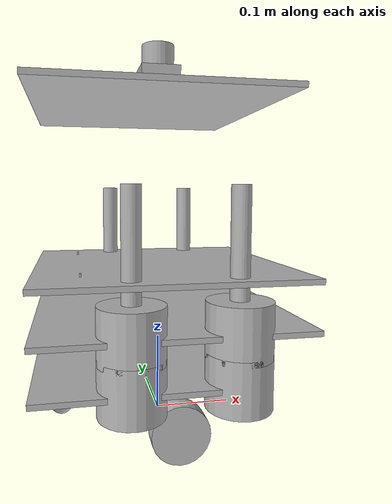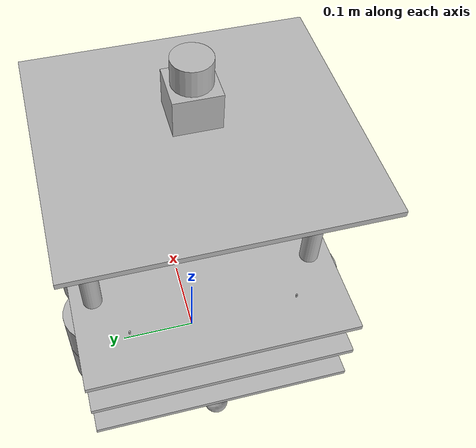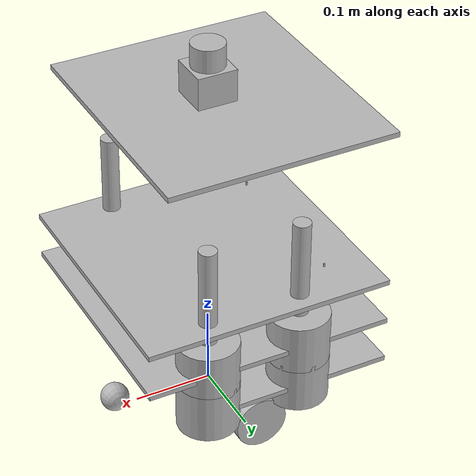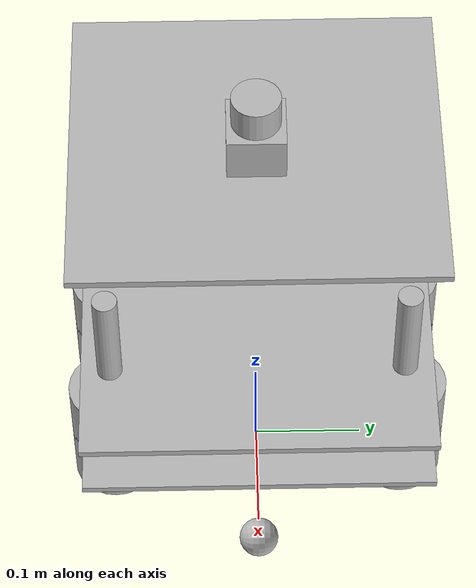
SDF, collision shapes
<?xml version="1.0" ?>
<sdf version="1.5">
  <model name="turtlebot">
    <link name="rack">
      <inertial>
        <pose>0.001453 -0.000453 0.029787 0 0 0</pose>
        <inertia>
          <ixx>0.058640</ixx>
          <ixy>0.000124</ixy>
          <ixz>0.000615</ixz>
          <iyy>0.058786</iyy>
          <iyz>0.000014</iyz>
          <izz>1.532440</izz>
        </inertia>
        <mass>2.234000</mass>
      </inertial>
      <collision name="plate_0_collision">
        <pose>-0.043340 0 0.084757 0 0 0</pose>
        <geometry>
          <box>
            <size>0.233502 0.314845 0.006401</size>
          </box>
        </geometry>
      </collision>
      <visual name="plate_0_visual">
        <pose>-0.043340 0 0.084757 0 0 0</pose>
        <geometry>
          <mesh>
            <uri>model://turtlebot/meshes/plate_0_logo.dae</uri>
          </mesh>
        </geometry>
      </visual>
      <collision name="plate_1_collision">
        <pose>-0.002660 0 0.141907 0 0 0</pose>
        <geometry>
          <box>
            <size>0.314856 0.314856 0.006401</size>
          </box>
        </geometry>
      </collision>
      <visual name="plate_1_visual">
        <pose>-0.002660 0 0.141907 0 0 0</pose>
        <geometry>
          <mesh>
            <uri>model://turtlebot/meshes/plate_1_logo.dae</uri>
          </mesh>
        </geometry>
      </visual>
      <collision name="plate_2_collision">
        <pose>-0.002660 0 0.199108 0 0 0</pose>
        <geometry>
          <box>
            <size>0.314856 0.314856 0.006401</size>
          </box>
        </geometry>
      </collision>
      <visual name="plate_2_visual">
        <pose>-0.002660 0 0.199108 0 0 0</pose>
        <geometry>
          <mesh>
            <uri>model://turtlebot/meshes/plate_1_logo.dae</uri>
          </mesh>
        </geometry>
      </visual>
      <collision name="plate_3_collision">
        <pose>-0.015820 0 0.405457 0 0 0</pose>
        <geometry>
          <box>
            <size>0.288000 0.315000 0.006401</size>
          </box>
        </geometry>
      </collision>
      <visual name="plate_3_visual">
        <pose>-0.015820 0 0.405457 0 0 0</pose>
        <geometry>
          <mesh>
            <uri>model://turtlebot/meshes/plate_2_logo.dae</uri>
          </mesh>
        </geometry>
      </visual>
      <collision name="spacer_0_collision">
        <pose>-0.002540 0.111468 0.079992 0 0 0</pose>
        <geometry>
          <cylinder>
            <radius>0.012700</radius>
            <length>0.003175</length>
          </cylinder>
        </geometry>
      </collision>
      <visual name="spacer_0_visual">
        <pose>-0.002540 0.111468 0.079992 0 0 0</pose>
        <geometry>
          <mesh>
            <uri>model://turtlebot/meshes/68-02403-125_Spacer.dae</uri>
          </mesh>
        </geometry>
      </visual>
      <collision name="spacer_1_collision">
        <pose>-0.002540 -0.111468 0.079992 0 0 0</pose>
        <geometry>
          <cylinder>
            <radius>0.012700</radius>
            <length>0.003175</length>
          </cylinder>
        </geometry>
      </collision>
      <visual name="spacer_1_visual">
        <pose>-0.002540 -0.111468 0.079992 0 0 0</pose>
        <geometry>
          <mesh>
            <uri>model://turtlebot/meshes/68-02403-125_Spacer.dae</uri>
          </mesh>
        </geometry>
      </visual>
      <collision name="spacer_2_collision">
        <pose>-0.072390 -0.111468 0.079992 0 0 0</pose>
        <geometry>
          <cylinder>
            <radius>0.012700</radius>
            <length>0.003175</length>
          </cylinder>
        </geometry>
      </collision>
      <visual name="spacer_2_visual">
        <pose>-0.072390 -0.111468 0.079992 0 0 0</pose>
        <geometry>
          <mesh>
            <uri>model://turtlebot/meshes/68-02403-125_Spacer.dae</uri>
          </mesh>
        </geometry>
      </visual>
      <collision name="spacer_3_collision">
        <pose>-0.072390 0.111468 0.079992 0 0 0</pose>
        <geometry>
          <cylinder>
            <radius>0.012700</radius>
            <length>0.003175</length>
          </cylinder>
        </geometry>
      </collision>
      <visual name="spacer_3_visual">
        <pose>-0.072390 0.111468 0.079992 0 0 0</pose>
        <geometry>
          <mesh>
            <uri>model://turtlebot/meshes/68-02403-125_Spacer.dae</uri>
          </mesh>
        </geometry>
      </visual>
      <collision name="standoff_2in_0_collision">
        <pose>0.067640 0.131420 0.087980 0 0 0</pose>
        <geometry>
          <cylinder>
            <radius>0.038100</radius>
            <length>0.063500</length>
          </cylinder>
        </geometry>
      </collision>
      <visual name="standoff_2in_0_visual">
        <pose>0.067640 0.131420 0.087980 0 0 0</pose>
        <geometry>
          <mesh>
            <uri>model://turtlebot/meshes/68-04552-2000-RA_Turtlebot_M-F_Standoff.dae</uri>
          </mesh>
        </geometry>
      </visual>
      <collision name="standoff_2in_1_collision">
        <pose>0.067640 -0.131420 0.087980 0 0 0</pose>
        <geometry>
          <cylinder>
            <radius>0.038100</radius>
            <length>0.063500</length>
          </cylinder>
        </geometry>
      </collision>
      <visual name="standoff_2in_1_visual">
        <pose>0.067640 -0.131420 0.087980 0 0 0</pose>
        <geometry>
          <mesh>
            <uri>model://turtlebot/meshes/68-04552-2000-RA_Turtlebot_M-F_Standoff.dae</uri>
          </mesh>
        </geometry>
      </visual>
      <collision name="standoff_2in_2_collision">
        <pose>-0.052832 -0.131420 0.087980 0 0 0</pose>
        <geometry>
          <cylinder>
            <radius>0.038100</radius>
            <length>0.063500</length>
          </cylinder>
        </geometry>
      </collision>
      <visual name="standoff_2in_2_visual">
        <pose>-0.052832 -0.131420 0.087980 0 0 0</pose>
        <geometry>
          <mesh>
            <uri>model://turtlebot/meshes/68-04552-2000-RA_Turtlebot_M-F_Standoff.dae</uri>
          </mesh>
        </geometry>
      </visual>
      <collision name="standoff_2in_3_collision">
        <pose>-0.052832 0.131420 0.087980 0 0 0</pose>
        <geometry>
          <cylinder>
            <radius>0.038100</radius>
            <length>0.063500</length>
          </cylinder>
        </geometry>
      </collision>
      <visual name="standoff_2in_3_visual">
        <pose>-0.052832 0.131420 0.087980 0 0 0</pose>
        <geometry>
          <mesh>
            <uri>model://turtlebot/meshes/68-04552-2000-RA_Turtlebot_M-F_Standoff.dae</uri>
          </mesh>
        </geometry>
      </visual>
      <collision name="standoff_2in_4_collision">
        <pose>0.067640 0.131420 0.145130 0 0 0</pose>
        <geometry>
          <cylinder>
            <radius>0.038100</radius>
            <length>0.063500</length>
          </cylinder>
        </geometry>
      </collision>
      <visual name="standoff_2in_4_visual">
        <pose>0.067640 0.131420 0.145130 0 0 0</pose>
        <geometry>
          <mesh>
            <uri>model://turtlebot/meshes/68-04552-2000-RA_Turtlebot_M-F_Standoff.dae</uri>
          </mesh>
        </geometry>
      </visual>
      <collision name="standoff_2in_5_collision">
        <pose>0.067640 -0.131420 0.145130 0 0 0</pose>
        <geometry>
          <cylinder>
            <radius>0.038100</radius>
            <length>0.063500</length>
          </cylinder>
        </geometry>
      </collision>
      <visual name="standoff_2in_5_visual">
        <pose>0.067640 -0.131420 0.145130 0 0 0</pose>
        <geometry>
          <mesh>
            <uri>model://turtlebot/meshes/68-04552-2000-RA_Turtlebot_M-F_Standoff.dae</uri>
          </mesh>
        </geometry>
      </visual>
      <collision name="standoff_2in_6_collision">
        <pose>-0.052832 -0.131420 0.145130 0 0 0</pose>
        <geometry>
          <cylinder>
            <radius>0.038100</radius>
            <length>0.063500</length>
          </cylinder>
        </geometry>
      </collision>
      <visual name="standoff_2in_6_visual">
        <pose>-0.052832 -0.131420 0.145130 0 0 0</pose>
        <geometry>
          <mesh>
            <uri>model://turtlebot/meshes/68-04552-2000-RA_Turtlebot_M-F_Standoff.dae</uri>
          </mesh>
        </geometry>
      </visual>
      <collision name="standoff_2in_7_collision">
        <pose>-0.052832 0.131420 0.145130 0 0 0</pose>
        <geometry>
          <cylinder>
            <radius>0.038100</radius>
            <length>0.063500</length>
          </cylinder>
        </geometry>
      </collision>
      <visual name="standoff_2in_7_visual">
        <pose>-0.052832 0.131420 0.145130 0 0 0</pose>
        <geometry>
          <mesh>
            <uri>model://turtlebot/meshes/68-04552-2000-RA_Turtlebot_M-F_Standoff.dae</uri>
          </mesh>
        </geometry>
      </visual>
      <collision name="standoff_8in_0_collision">
        <pose>0.067640 0.131420 0.202280 0 0 0</pose>
        <geometry>
          <cylinder>
            <radius>0.011113</radius>
            <length>0.203200</length>
          </cylinder>
        </geometry>
      </collision>
      <visual name="standoff_8in_0_visual">
        <pose>0.067640 0.131420 0.202280 0 0 0</pose>
        <geometry>
          <mesh>
            <uri>model://turtlebot/meshes/68-02421-8000-RA_Turtlebot_F-F_Standoff.dae</uri>
          </mesh>
        </geometry>
      </visual>
      <collision name="standoff_8in_1_collision">
        <pose>0.067640 -0.131420 0.202280 0 0 0</pose>
        <geometry>
          <cylinder>
            <radius>0.011113</radius>
            <length>0.203200</length>
          </cylinder>
        </geometry>
      </collision>
      <visual name="standoff_8in_1_visual">
        <pose>0.067640 -0.131420 0.202280 0 0 0</pose>
        <geometry>
          <mesh>
            <uri>model://turtlebot/meshes/68-02421-8000-RA_Turtlebot_F-F_Standoff.dae</uri>
          </mesh>
        </geometry>
      </visual>
      <collision name="standoff_8in_2_collision">
        <pose>-0.052832 -0.131420 0.202280 0 0 0</pose>
        <geometry>
          <cylinder>
            <radius>0.011113</radius>
            <length>0.203200</length>
          </cylinder>
        </geometry>
      </collision>
      <visual name="standoff_8in_2_visual">
        <pose>-0.052832 -0.131420 0.202280 0 0 0</pose>
        <geometry>
          <mesh>
            <uri>model://turtlebot/meshes/68-02421-8000-RA_Turtlebot_F-F_Standoff.dae</uri>
          </mesh>
        </geometry>
      </visual>
      <collision name="standoff_8in_3_collision">
        <pose>-0.052832 0.131420 0.202280 0 0 0</pose>
        <geometry>
          <cylinder>
            <radius>0.011113</radius>
            <length>0.203200</length>
          </cylinder>
        </geometry>
      </collision>
      <visual name="standoff_8in_3_visual">
        <pose>-0.052832 0.131420 0.202280 0 0 0</pose>
        <geometry>
          <mesh>
            <uri>model://turtlebot/meshes/68-02421-8000-RA_Turtlebot_F-F_Standoff.dae</uri>
          </mesh>
        </geometry>
      </visual>
      <collision name="standoff_kinect_0_collision">
        <pose>-0.105098 0.098000 0.202308 0 0 0</pose>
        <geometry>
          <cylinder>
            <radius>0.001111</radius>
            <length>0.008585</length>
          </cylinder>
        </geometry>
      </collision>
      <visual name="standoff_kinect_0_visual">
        <pose>-0.105098 0.098000 0.202308 0 0 0</pose>
        <geometry>
          <mesh>
            <uri>model://turtlebot/meshes/68-04556-RA_Kinect_Standoff_Assy.dae</uri>
          </mesh>
        </geometry>
      </visual>
      <collision name="standoff_kinect_1_collision">
        <pose>-0.105098 -0.098000 0.202308 0 0 0</pose>
        <geometry>
          <cylinder>
            <radius>0.001111</radius>
            <length>0.008585</length>
          </cylinder>
        </geometry>
      </collision>
      <visual name="standoff_kinect_1_visual">
        <pose>-0.105098 -0.098000 0.202308 0 0 0</pose>
        <geometry>
          <mesh>
            <uri>model://turtlebot/meshes/68-04556-RA_Kinect_Standoff_Assy.dae</uri>
          </mesh>
        </geometry>
      </visual>
      <sensor name="laser" type="ray">
        <pose>-0.065000 0 0.092000 0 0 0</pose>
        <ray>
          <scan>
            <horizontal>
              <samples>180</samples>
              <resolution>1.000000</resolution>
              <min_angle>-2.268928</min_angle>
              <max_angle>2.268928</max_angle>
            </horizontal>
          </scan>
          <range>
            <min>0.080000</min>
            <max>10</max>
            <resolution>0.010000</resolution>
          </range>
        </ray>
        <update_rate>20</update_rate>
      </sensor>
    </link>
    <include>
      <uri>/home/sree/catkin_ws/src/turtlebot_sim/models/create</uri>
    </include>

    <include>
      <uri>/home/sree/catkin_ws/src/turtlebot_sim/models/hokuyo</uri>
      <pose>0 0 0.45 0 0 0</pose>
    </include>

    <joint name="hokuyo_joint" type="fixed">
      <parent>create::base</parent>
      <child>hokuyo::link</child>
      <axis>
        <xyz>0 0 1</xyz>
        <limit>
          <lower>0</lower>
          <upper>0</upper>
        </limit>
      </axis>
    </joint>

    <joint name="create_rack" type="revolute">
      <parent>create::base</parent>
      <child>rack</child>
      <axis>
        <xyz>0 0 1</xyz>
        <limit>
          <lower>0</lower>
          <upper>0</upper>
        </limit>
        <use_parent_model_frame>true</use_parent_model_frame>
      </axis>
    </joint>

  </model>
</sdf>

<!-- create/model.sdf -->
<sdf version="1.5">
  <model name="create">
    <link name="base">
      <inertial>
        <pose>0.001453 -0.000453 0.029787 0 0 0</pose>
        <inertia>
          <ixx>0.058640</ixx>
          <ixy>0.000124</ixy>
          <ixz>0.000615</ixz>
          <iyy>0.058786</iyy>
          <iyz>0.000014</iyz>
          <izz>1.532440</izz>
        </inertia>
        <mass>2.234000</mass>
      </inertial>
      <collision name="base_collision">
        <pose>0 0 0.047800 0 0 0</pose>
        <geometry>
          <cylinder>
            <radius>0.016495</radius>
            <length>0.061163</length>
          </cylinder>
        </geometry>
      </collision>
      <visual name="base_visual">
        <pose>0 0 0.047800 0 0 0</pose>
        <geometry>
          <mesh>
            <uri>model://create/meshes/create_body.dae</uri>
          </mesh>
        </geometry>
      </visual>
      <collision name="front_wheel_collision">
        <pose>0.130000 0 0.017000 0 1.570700 1.570700</pose>
        <geometry>
          <sphere>
            <radius>0.018000</radius>
          </sphere>
        </geometry>
        <surface>
          <friction>
            <ode>
              <mu>0</mu>
              <mu2>0</mu2>
              <fdir1>0 0 0</fdir1>
              <slip1>0</slip1>
              <slip2>0</slip2>
            </ode>
          </friction>
        </surface>
      </collision>
      <visual name="front_wheel_visual">
        <pose>0.130000 0 0.017000 0 1.570700 1.570700</pose>
        <geometry>
          <sphere>
            <radius>0.009000</radius>
          </sphere>
        </geometry>
      </visual>
      <collision name="rear_wheel_collision">
        <pose>-0.13 0 0.017 0 1.5707 1.5707</pose>
        <geometry>
          <sphere>
            <radius>0.015000</radius>
          </sphere>
        </geometry>
        <surface>
          <friction>
            <ode>
              <mu>0</mu>
              <mu2>0</mu2>
              <fdir1>0 0 0</fdir1>
              <slip1>0</slip1>
              <slip2>0</slip2>
            </ode>
          </friction>
        </surface>
      </collision>
      <visual name="rear_wheel_visual">
        <pose>-0.130000 0 0.017000 0 1.570700 1.570700</pose>
        <geometry>
          <sphere>
            <radius>0.007500</radius>
          </sphere>
        </geometry>
      </visual>
      <sensor name="left_cliff_sensor" type="ray">
        <pose>0.070000 0.140000 0.027000 0 1.570790 0</pose>
        <ray>
          <scan>
            <horizontal>
              <samples>1</samples>
              <resolution>1.000000</resolution>
              <min_angle>0</min_angle>
              <max_angle>0</max_angle>
            </horizontal>
          </scan>
          <range>
            <min>0.010000</min>
            <max>0.040000</max>
            <resolution>0.100000</resolution>
          </range>
        </ray>
      </sensor>
      <sensor name="leftfront_cliff_sensor" type="ray">
        <pose>0.150000 0.040000 0.027000 0 1.570790 0</pose>
        <ray>
          <scan>
            <horizontal>
              <samples>1</samples>
              <resolution>1.000000</resolution>
              <min_angle>0</min_angle>
              <max_angle>0</max_angle>
            </horizontal>
          </scan>
          <range>
            <min>0.010000</min>
            <max>0.040000</max>
            <resolution>0.100000</resolution>
          </range>
        </ray>
      </sensor>
      <sensor name="right_cliff_sensor" type="ray">
        <pose>0.070000 -0.140000 0.027000 0 1.570790 0</pose>
        <ray>
          <scan>
            <horizontal>
              <samples>1</samples>
              <resolution>1.000000</resolution>
              <min_angle>0</min_angle>
              <max_angle>0</max_angle>
            </horizontal>
          </scan>
          <range>
            <min>0.010000</min>
            <max>0.040000</max>
            <resolution>0.100000</resolution>
          </range>
        </ray>
      </sensor>
      <sensor name="rightfront_cliff_sensor" type="ray">
        <pose>0.150000 -0.040000 0.027000 0 1.570790 0</pose>
        <ray>
          <scan>
            <horizontal>
              <samples>1</samples>
              <resolution>1.000000</resolution>
              <min_angle>0</min_angle>
              <max_angle>0</max_angle>
            </horizontal>
          </scan>
          <range>
            <min>0.010000</min>
            <max>0.040000</max>
            <resolution>0.100000</resolution>
          </range>
        </ray>
        <plugin name="rightfront_cliff_sensor" filename="libgazebo_ros_laser.so">
          <visualize>true</visualize>
         <topicName>/rightfront_cliff_sensor</topicName>
         <frameName>base</frameName>
       </plugin>
      </sensor>
      <sensor name="wall_sensor" type="ray">
        <pose>0.090000 -0.120000 0.059000 0 0 -1.000000</pose>
        <ray>
          <scan>
            <horizontal>
              <samples>1</samples>
              <resolution>1.000000</resolution>
              <min_angle>0</min_angle>
              <max_angle>0</max_angle>
            </horizontal>
          </scan>
          <range>
            <min>0.016000</min>
            <max>0.040000</max>
            <resolution>0.100000</resolution>
          </range>
        </ray>
      </sensor>
    </link>
    <link name="left_wheel">
      <pose>0 0.130000 0.032000 0 0 0</pose>
      <inertial>
        <inertia>
          <ixx>0.001000</ixx>
          <ixy>0</ixy>
          <ixz>0</ixz>
          <iyy>0.001000</iyy>
          <iyz>0</iyz>
          <izz>0.001000</izz>
        </inertia>
        <mass>0.010000</mass>
      </inertial>
      <collision name="collision">
        <pose>0 0 0 0 1.570700 1.570700</pose>
        <geometry>
          <cylinder>
            <radius>0.033000</radius>
            <length>0.023000</length>
          </cylinder>
        </geometry>
        <surface>
          <friction>
            <ode>
              <mu>10</mu>
              <mu2>10</mu2>
              <fdir1>0 0 0</fdir1>
              <slip1>0</slip1>
              <slip2>0</slip2>
            </ode>
          </friction>
        </surface>
      </collision>
      <visual name="visual">
        <pose>0 0 0 0 1.570700 1.570700</pose>
        <geometry>
          <cylinder>
            <radius>0.033000</radius>
            <length>0.023000</length>
          </cylinder>
        </geometry>
      </visual>
    </link>
    <link name="right_wheel">
      <pose>0 -0.130000 0.032000 0 0 0</pose>
      <inertial>
        <inertia>
          <ixx>0.001000</ixx>
          <ixy>0</ixy>
          <ixz>0</ixz>
          <iyy>0.001000</iyy>
          <iyz>0</iyz>
          <izz>0.001000</izz>
        </inertia>
        <mass>0.010000</mass>
      </inertial>
      <collision name="collision">
        <pose>0 0 0 0 1.570700 1.570700</pose>
        <geometry>
          <cylinder>
            <radius>0.033000</radius>
            <length>0.023000</length>
          </cylinder>
        </geometry>
        <surface>
          <friction>
            <ode>
              <mu>10</mu>
              <mu2>10</mu2>
              <fdir1>0 0 0</fdir1>
              <slip1>0</slip1>
              <slip2>0</slip2>
            </ode>
          </friction>
        </surface>
      </collision>
      <visual name="visual">
        <pose>0 0 0 0 1.570700 1.570700</pose>
        <geometry>
          <cylinder>
            <radius>0.033000</radius>
            <length>0.023000</length>
          </cylinder>
        </geometry>
      </visual>
    </link>
    <joint name="left_wheel" type="revolute">
      <parent>base</parent>
      <child>left_wheel</child>
      <axis>
        <xyz>0 1 0</xyz>
        <use_parent_model_frame>true</use_parent_model_frame>
      </axis>
    </joint>
    <joint name="right_wheel" type="revolute">
      <parent>base</parent>
      <child>right_wheel</child>
      <axis>
        <xyz>0 1 0</xyz>
        <use_parent_model_frame>true</use_parent_model_frame>
      </axis>
    </joint>
    <plugin name="differential_drive_controller" filename="libgazebo_ros_diff_drive.so">
         <alwaysOn>true</alwaysOn>
         <updateRate>20</updateRate>
         <leftJoint>left_wheel</leftJoint>
         <rightJoint>right_wheel</rightJoint>
         <wheelSeparation>0.4</wheelSeparation>
         <wheelDiameter>0.1</wheelDiameter>
         <wheelTorque>20</wheelTorque>
         <wheelAcceleration>5</wheelAcceleration>
         <commandTopic>cmd_vel</commandTopic>
         <odometryTopic>odom</odometryTopic>
         <odometryFrame>odom</odometryFrame>
         <publishTf>1</publishTf>
         <publishWheelJointState>true</publishWheelJointState>
         <robotBaseFrame>base</robotBaseFrame>
      </plugin>
  </model>
</sdf>

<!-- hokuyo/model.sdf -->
<sdf version="1.5">
  <model name="hokuyo">
    <pose>0 0 0.035 0 0 0</pose>
    <link name="link">
      <inertial>
        <mass>0.1</mass>
      </inertial>
      <visual name="visual">
        <geometry>
          <mesh>
            <uri>model://hokuyo/meshes/hokuyo.dae</uri>
          </mesh>
        </geometry>
      </visual>
      <collision name="collision-base">
        <pose>0 0 -0.0145 0 0 0</pose>
        <geometry>
          <box>
            <size>0.05 0.05 0.041</size>
          </box>
        </geometry>
      </collision>
      <collision name="collision-top">
        <pose>0 0 0.0205 0 0 0</pose>
        <geometry>
          <cylinder>
            <radius>0.021</radius>
            <length>0.029</length>
          </cylinder>
        </geometry>
      </collision>
      <sensor name="laser" type="ray">
        <pose>0.01 0 0.0175 0 -0 0</pose>
        <ray>
          <scan>
            <horizontal>
              <samples>640</samples>
              <resolution>1</resolution>
              <min_angle>-2.26889</min_angle>
              <max_angle>2.268899</max_angle>
            </horizontal>
          </scan>
          <range>
            <min>0.08</min>
            <max>10</max>
            <resolution>0.01</resolution>
          </range>
        </ray>
        <plugin name="laser_back" filename="libgazebo_ros_laser.so">
          <visualize>true</visualize>
         <topicName>/hokuyo_laser</topicName>
         <frameName>turtlebot/hokuyo::link</frameName>
       </plugin>
      </sensor>
    </link>
  </model>
</sdf>
